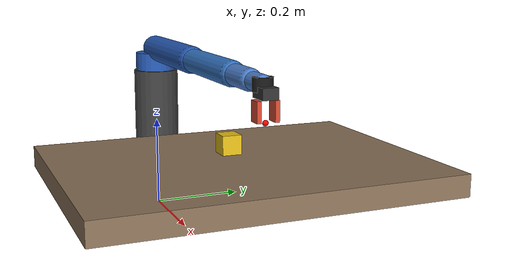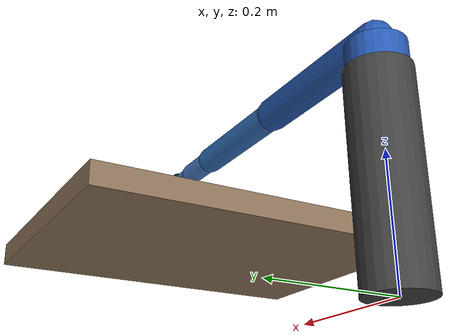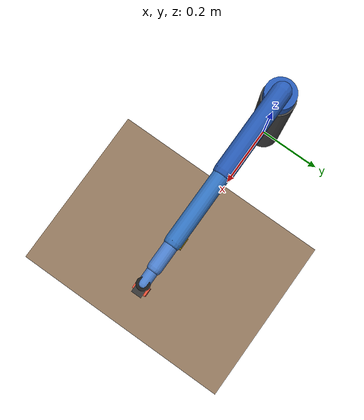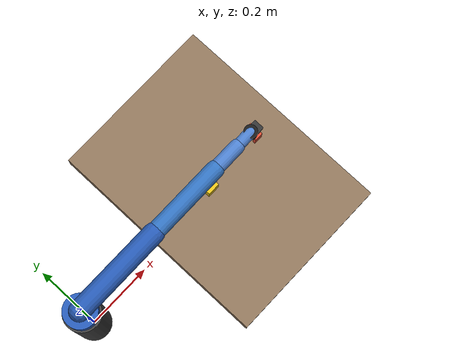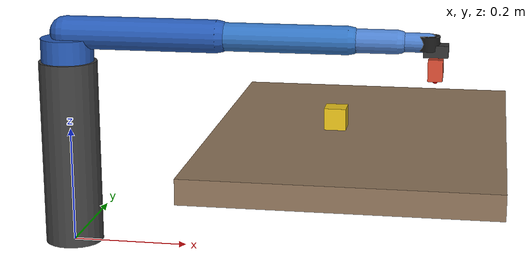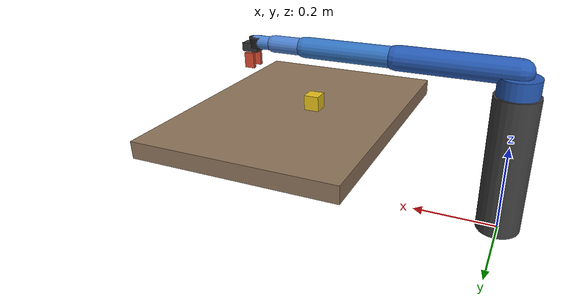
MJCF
<mujoco model="franka_like_pick">
  <!-- CPU 无头可跑的 6 轴串联臂，运动学类似 Franka：底座偏航、肩、肘、三腕，加平行夹爪。
       不是官方 Panda mesh。手臂不与方块碰撞，只有指垫抓取。 -->
  <compiler angle="radian"/>
  <option timestep="0.002" gravity="0 0 -9.81" integrator="implicitfast" cone="elliptic">
    <flag warmstart="enable"/>
  </option>
  <default>
    <geom contype="1" conaffinity="1" condim="4" friction="1.0 0.05 0.001"
          solref="0.01 1" solimp="0.92 0.97 0.001" margin="0.0005"/>
    <joint damping="1.5" armature="0.02" limited="true"/>
    <position kp="80" kv="8" forcerange="-40 40"/>
  </default>
  <contact>
    <exclude body1="base" body2="link1"/>
    <exclude body1="link1" body2="link2"/>
    <exclude body1="link2" body2="link3"/>
    <exclude body1="link3" body2="link4"/>
    <exclude body1="link4" body2="link5"/>
    <exclude body1="link5" body2="flange"/>
    <exclude body1="flange" body2="ee"/>
    <exclude body1="ee" body2="palm"/>
    <exclude body1="palm" body2="finger_l"/>
    <exclude body1="palm" body2="finger_r"/>
  </contact>
  <worldbody>
    <geom name="table" type="box" size="0.24 0.32 0.02" pos="0.50 0 0.20" rgba="0.55 0.45 0.35 1" contype="1" conaffinity="3"/>
    <body name="base" pos="0 0 0">
      <inertial pos="0 0 0.1" mass="3" diaginertia="0.02 0.02 0.02"/>
      <geom name="pedestal" type="cylinder" size="0.05 0.16" pos="0 0 0.16" rgba="0.25 0.25 0.25 1" contype="0" conaffinity="0"/>
      <body name="link1" pos="0 0 0.32">
        <joint name="j1" type="hinge" axis="0 0 1" range="-2.6 2.6"/>
        <geom name="g1" type="cylinder" size="0.045 0.04" rgba="0.15 0.35 0.7 1" contype="2" conaffinity="2"/>
        <body name="link2" pos="0 0 0.05">
          <joint name="j2" type="hinge" axis="0 1 0" range="-2.4 0.4"/>
          <geom name="g2" type="capsule" fromto="0 0 0 0.26 0 0" size="0.028" rgba="0.15 0.35 0.7 1" contype="2" conaffinity="2"/>
          <body name="link3" pos="0.26 0 0">
            <joint name="j3" type="hinge" axis="0 1 0" range="-0.2 2.8"/>
            <geom name="g3" type="capsule" fromto="0 0 0 0.22 0 0" size="0.024" rgba="0.2 0.45 0.75 1" contype="2" conaffinity="2"/>
            <body name="link4" pos="0.22 0 0">
              <joint name="j4" type="hinge" axis="0 1 0" range="-2.6 2.6"/>
              <geom name="g4" type="capsule" fromto="0 0 0 0.08 0 0" size="0.02" rgba="0.3 0.5 0.8 1" contype="2" conaffinity="2"/>
              <body name="link5" pos="0.08 0 0">
                <joint name="j5" type="hinge" axis="1 0 0" range="-2.8 2.8"/>
                <geom name="g5" type="capsule" fromto="0 0 0 0.05 0 0" size="0.016" rgba="0.3 0.5 0.8 1" contype="2" conaffinity="2"/>
                <body name="flange" pos="0.05 0 0">
                  <joint name="j6" type="hinge" axis="0 0 1" range="-3.0 3.0"/>
                  <geom name="g6" type="cylinder" size="0.018 0.012" rgba="0.1 0.1 0.1 1" contype="2" conaffinity="2"/>
                  <body name="ee" pos="0.012 0 0" quat="0 1 0 0">
                    <site name="grasp" pos="0 0 0.062" size="0.005" rgba="1 0 0 1"/>
                    <body name="palm" pos="0 0 0.012">
                      <geom name="palm" type="box" size="0.02 0.014 0.01" mass="0.08" rgba="0.2 0.2 0.2 1" contype="2" conaffinity="0"/>
                      <body name="finger_l" pos="0 0.016 0.016">
                        <joint name="grip_l" type="slide" axis="0 1 0" range="0 0.028" damping="0.4"/>
                        <geom name="pad_l" type="box" size="0.012 0.004 0.018" pos="0 0 0.014"
                              rgba="0.85 0.3 0.2 1" friction="2.5 0.1 0.01" condim="6" mass="0.02"/>
                      </body>
                      <body name="finger_r" pos="0 -0.016 0.016">
                        <joint name="grip_r" type="slide" axis="0 -1 0" range="0 0.028" damping="0.4"/>
                        <geom name="pad_r" type="box" size="0.012 0.004 0.018" pos="0 0 0.014"
                              rgba="0.85 0.3 0.2 1" friction="2.5 0.1 0.01" condim="6" mass="0.02"/>
                      </body>
                    </body>
                  </body>
                </body>
              </body>
            </body>
          </body>
        </body>
      </body>
    </body>
    <body name="cube" pos="0.46 0.0 0.24">
      <freejoint name="cube_free"/>
      <geom name="cube" type="box" size="0.018 0.018 0.018" mass="0.05" rgba="0.9 0.75 0.1 1"
            friction="1.8 0.05 0.01" condim="4"/>
    </body>
  </worldbody>
  <actuator>
    <position name="a1" joint="j1" kp="140" kv="14" ctrlrange="-2.6 2.6" forcerange="-80 80"/>
    <position name="a2" joint="j2" kp="160" kv="16" ctrlrange="-2.4 0.4" forcerange="-80 80"/>
    <position name="a3" joint="j3" kp="120" kv="12" ctrlrange="-0.2 2.8" forcerange="-60 60"/>
    <position name="a4" joint="j4" kp="60" kv="6" ctrlrange="-2.6 2.6" forcerange="-30 30"/>
    <position name="a5" joint="j5" kp="30" kv="3" ctrlrange="-2.8 2.8" forcerange="-20 20"/>
    <position name="a6" joint="j6" kp="20" kv="2" ctrlrange="-3 3" forcerange="-12 12"/>
    <position name="ag_l" joint="grip_l" kp="60" kv="2" ctrlrange="0 0.028" forcerange="-20 20"/>
    <position name="ag_r" joint="grip_r" kp="60" kv="2" ctrlrange="0 0.028" forcerange="-20 20"/>
  </actuator>
</mujoco>
